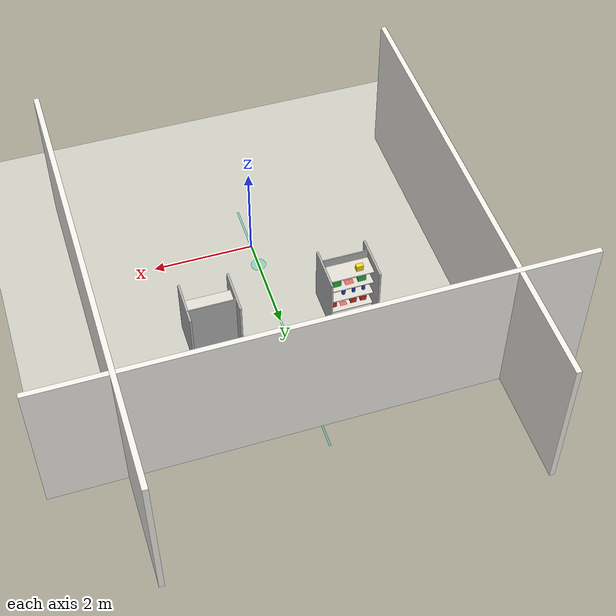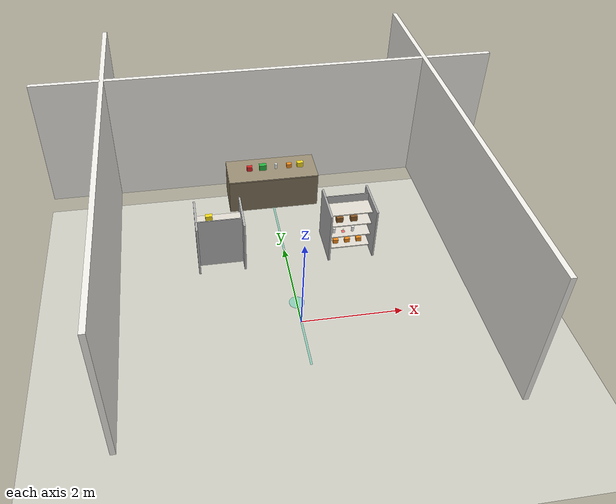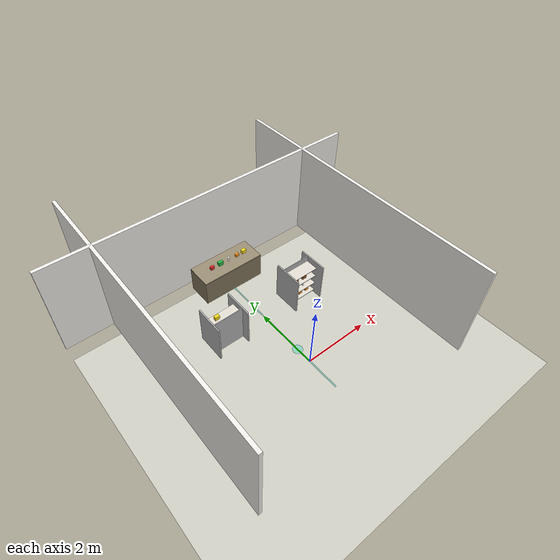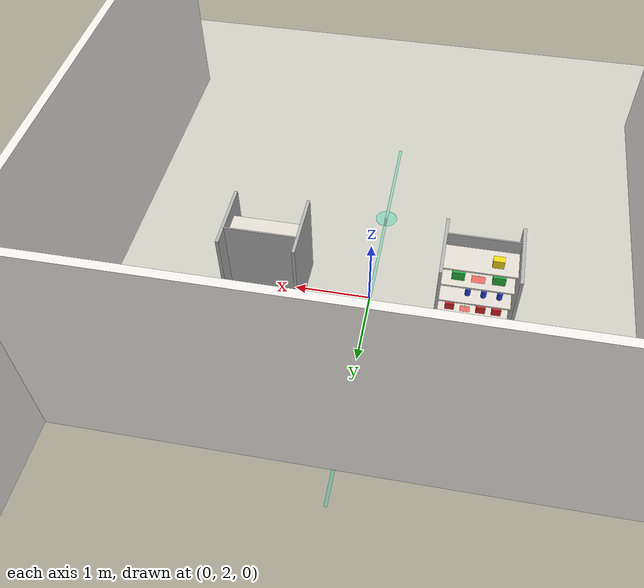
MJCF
<mujoco model="roboshelf_retail_v1">

  <compiler angle="radian" autolimits="true"/>
  <option timestep="0.002" gravity="0 0 -9.81" integrator="implicit"/>

  <visual>
    <headlight diffuse="0.8 0.8 0.8" ambient="0.3 0.3 0.3" specular="0.1 0.1 0.1"/>
    <global azimuth="135" elevation="-25" offwidth="1920" offheight="1080"/>
    <quality shadowsize="4096"/>
    <map znear="0.01" zfar="50"/>
  </visual>

  <default>
    <default class="product_box">
      <geom friction="0.7 0.01 0.001" condim="4" solref="0.01 1" solimp="0.9 0.95 0.001"/>
    </default>
    <default class="product_cyl">
      <geom friction="0.6 0.01 0.001" condim="4" solref="0.01 1" solimp="0.9 0.95 0.001"/>
    </default>
  </default>

  <asset>
    <texture name="tex_floor" type="2d" builtin="checker" width="512" height="512"
             rgb1="0.82 0.82 0.78" rgb2="0.78 0.78 0.74"/>
    <material name="mat_floor" texture="tex_floor" texrepeat="8 6" reflectance="0.1"/>
    <material name="mat_shelf" rgba="0.7 0.7 0.7 1" reflectance="0.3" shininess="0.5"/>
    <material name="mat_board" rgba="0.88 0.86 0.82 1" reflectance="0.05"/>
    <material name="mat_wall" rgba="0.95 0.94 0.92 1"/>
    <material name="mat_red" rgba="0.85 0.15 0.15 1"/>
    <material name="mat_blue" rgba="0.15 0.25 0.85 1"/>
    <material name="mat_green" rgba="0.15 0.70 0.25 1"/>
    <material name="mat_yellow" rgba="0.95 0.85 0.10 1"/>
    <material name="mat_orange" rgba="0.95 0.55 0.10 1"/>
    <material name="mat_white" rgba="0.95 0.95 0.95 1"/>
    <material name="mat_brown" rgba="0.55 0.35 0.15 1"/>
    <material name="mat_cardboard" rgba="0.65 0.50 0.30 1"/>
  </asset>

  <worldbody>

    <!-- Világítás -->
    <light name="ceil_1" pos="0 1.5 3.0" dir="0 0 -1" diffuse="0.9 0.9 0.9" castshadow="true" cutoff="60"/>
    <light name="ceil_2" pos="0 3.5 3.0" dir="0 0 -1" diffuse="0.9 0.9 0.9" castshadow="true" cutoff="60"/>
    <light name="ambient" pos="0 2.5 4.0" dir="0 0 -1" diffuse="0.3 0.3 0.3" castshadow="false"/>

    <!-- Padló & falak -->
    <geom name="floor" type="plane" size="5 4 0.01" material="mat_floor"/>
    <geom name="wall_back" type="box" size="5 0.05 1.5" pos="0 4.5 1.5" material="mat_wall"/>
    <geom name="wall_L" type="box" size="0.05 4.5 1.5" pos="-3.5 2.25 1.5" material="mat_wall"/>
    <geom name="wall_R" type="box" size="0.05 4.5 1.5" pos="3.5 2.25 1.5" material="mat_wall"/>

    <!-- ========== GONDOLA A (statikus polcváz) — x=-1.35, y=2.0 ========== -->
    <body name="gondola_A" pos="-1.35 2.0 0">
      <geom name="gA_sL" type="box" size="0.02 0.45 0.60" pos="-0.47 0 0.60" material="mat_shelf"/>
      <geom name="gA_sR" type="box" size="0.02 0.45 0.60" pos="0.47 0 0.60" material="mat_shelf"/>
      <geom name="gA_bk" type="box" size="0.47 0.01 0.60" pos="0 -0.20 0.60" material="mat_shelf"/>
      <geom name="gA_b1" type="box" size="0.45 0.20 0.012" pos="0 0 0.10" material="mat_board"/>
      <geom name="gA_b2" type="box" size="0.45 0.20 0.012" pos="0 0 0.40" material="mat_board"/>
      <geom name="gA_b3" type="box" size="0.45 0.20 0.012" pos="0 0 0.70" material="mat_board"/>
      <geom name="gA_b4" type="box" size="0.45 0.20 0.012" pos="0 0 1.00" material="mat_board"/>
    </body>

    <!-- ========== GONDOLA B (statikus polcváz) — x=1.35, y=2.0 ========== -->
    <body name="gondola_B" pos="1.35 2.0 0">
      <geom name="gB_sL" type="box" size="0.02 0.45 0.60" pos="-0.47 0 0.60" material="mat_shelf"/>
      <geom name="gB_sR" type="box" size="0.02 0.45 0.60" pos="0.47 0 0.60" material="mat_shelf"/>
      <geom name="gB_bk" type="box" size="0.47 0.01 0.60" pos="0 0.20 0.60" material="mat_shelf"/>
      <geom name="gB_b1" type="box" size="0.45 0.20 0.012" pos="0 0 0.10" material="mat_board"/>
      <geom name="gB_b2" type="box" size="0.45 0.20 0.012" pos="0 0 0.40" material="mat_board"/>
      <geom name="gB_b3" type="box" size="0.45 0.20 0.012" pos="0 0 0.70" material="mat_board"/>
      <geom name="gB_b4" type="box" size="0.45 0.20 0.012" pos="0 0 1.00" material="mat_board"/>
    </body>

    <!-- ========== RAKTÁR ASZTAL (statikus) ========== -->
    <body name="storage" pos="0 3.8 0">
      <geom name="st_legs" type="box" size="1.0 0.40 0.40" pos="0 0 0.40" rgba="0.50 0.45 0.35 1"/>
      <geom name="st_top" type="box" size="1.0 0.40 0.015" pos="0 0 0.815" rgba="0.60 0.55 0.45 1"/>
      <geom name="crate_1" type="box" size="0.25 0.20 0.15" pos="-0.70 0.25 0.15" material="mat_cardboard"/>
      <geom name="crate_2" type="box" size="0.20 0.15 0.12" pos="0.70 0.30 0.12" material="mat_cardboard"/>
    </body>

    <!-- ========== POLCON LÉVŐ TERMÉKEK (freejoint, worldbody szinten) ========== -->

    <!-- Gondola A, 1. polc: piros dobozok, z = 0.10 + 0.012 + 0.055 = 0.167 -->
    <body name="pA1_1" pos="-1.65 2.05 0.167"><freejoint/>
      <geom type="box" size="0.06 0.04 0.055" class="product_box" material="mat_red" mass="0.35"/></body>
    <body name="pA1_2" pos="-1.45 2.05 0.167"><freejoint/>
      <geom type="box" size="0.06 0.04 0.055" class="product_box" material="mat_red" mass="0.35"/></body>
    <!-- pA1_3: ÜRES (OOS) -->
    <body name="pA1_4" pos="-1.05 2.05 0.167"><freejoint/>
      <geom type="box" size="0.06 0.04 0.055" class="product_box" material="mat_red" mass="0.35"/></body>

    <!-- Gondola A, 2. polc: kék hengerek, z = 0.40 + 0.012 + 0.055 = 0.467 -->
    <body name="pA2_1" pos="-1.65 2.05 0.467"><freejoint/>
      <geom type="cylinder" size="0.035 0.055" class="product_cyl" material="mat_blue" mass="0.50"/></body>
    <body name="pA2_2" pos="-1.45 2.05 0.467"><freejoint/>
      <geom type="cylinder" size="0.035 0.055" class="product_cyl" material="mat_blue" mass="0.50"/></body>
    <body name="pA2_3" pos="-1.25 2.05 0.467"><freejoint/>
      <geom type="cylinder" size="0.035 0.055" class="product_cyl" material="mat_blue" mass="0.50"/></body>

    <!-- Gondola A, 3. polc: zöld dobozok, z = 0.70 + 0.012 + 0.065 = 0.777 -->
    <body name="pA3_1" pos="-1.60 2.05 0.777"><freejoint/>
      <geom type="box" size="0.08 0.05 0.065" class="product_box" material="mat_green" mass="0.60"/></body>
    <!-- pA3_2: ÜRES (OOS) -->
    <body name="pA3_3" pos="-1.10 2.05 0.777"><freejoint/>
      <geom type="box" size="0.08 0.05 0.065" class="product_box" material="mat_green" mass="0.60"/></body>

    <!-- Gondola A, 4. polc: sárga, z = 1.00 + 0.012 + 0.06 = 1.072 -->
    <body name="pA4_1" pos="-1.55 2.05 1.072"><freejoint/>
      <geom type="box" size="0.07 0.045 0.06" class="product_box" material="mat_yellow" mass="0.25"/></body>

    <!-- Gondola B, 1. polc: narancssárga -->
    <body name="pB1_1" pos="1.10 1.95 0.167"><freejoint/>
      <geom type="box" size="0.055 0.04 0.05" class="product_box" material="mat_orange" mass="0.30"/></body>
    <body name="pB1_2" pos="1.35 1.95 0.167"><freejoint/>
      <geom type="box" size="0.055 0.04 0.05" class="product_box" material="mat_orange" mass="0.30"/></body>
    <body name="pB1_3" pos="1.60 1.95 0.167"><freejoint/>
      <geom type="box" size="0.055 0.04 0.05" class="product_box" material="mat_orange" mass="0.30"/></body>

    <!-- Gondola B, 2. polc: fehér hengerek -->
    <body name="pB2_1" pos="1.05 1.95 0.472"><freejoint/>
      <geom type="cylinder" size="0.03 0.06" class="product_cyl" material="mat_white" mass="0.40"/></body>
    <!-- pB2_2: ÜRES (OOS) -->
    <body name="pB2_3" pos="1.45 1.95 0.472"><freejoint/>
      <geom type="cylinder" size="0.03 0.06" class="product_cyl" material="mat_white" mass="0.40"/></body>

    <!-- Gondola B, 3. polc: barna -->
    <body name="pB3_1" pos="1.15 1.95 0.777"><freejoint/>
      <geom type="box" size="0.07 0.05 0.06" class="product_box" material="mat_brown" mass="0.55"/></body>
    <body name="pB3_2" pos="1.45 1.95 0.777"><freejoint/>
      <geom type="box" size="0.07 0.05 0.06" class="product_box" material="mat_brown" mass="0.55"/></body>

    <!-- ========== RAKTÁRI TERMÉKEK (pótolni kell a polcra) ========== -->
    <!-- stock_1: piros → gA 1. polc 3. pozíció -->
    <body name="stock_1" pos="-0.50 3.8 0.885"><freejoint/>
      <geom type="box" size="0.06 0.04 0.055" class="product_box" material="mat_red" mass="0.35"/></body>
    <!-- stock_2: zöld → gA 3. polc 2. pozíció -->
    <body name="stock_2" pos="-0.20 3.8 0.895"><freejoint/>
      <geom type="box" size="0.08 0.05 0.065" class="product_box" material="mat_green" mass="0.60"/></body>
    <!-- stock_3: fehér → gB 2. polc 2. pozíció -->
    <body name="stock_3" pos="0.10 3.8 0.890"><freejoint/>
      <geom type="cylinder" size="0.03 0.06" class="product_cyl" material="mat_white" mass="0.40"/></body>
    <!-- stock_4: extra narancssárga -->
    <body name="stock_4" pos="0.40 3.8 0.880"><freejoint/>
      <geom type="box" size="0.055 0.04 0.05" class="product_box" material="mat_orange" mass="0.30"/></body>
    <!-- stock_5: extra sárga -->
    <body name="stock_5" pos="0.65 3.8 0.890"><freejoint/>
      <geom type="box" size="0.07 0.045 0.06" class="product_box" material="mat_yellow" mass="0.25"/></body>

    <!-- Jelölők -->
    <geom name="nav" type="box" size="0.02 3.0 0.001" pos="0 2.0 0.001" rgba="0 0.83 0.66 0.3" contype="0" conaffinity="0"/>
    <site name="oos_A1_3" type="box" size="0.065 0.045 0.002" pos="-1.25 2.05 0.115" rgba="1 0 0 0.5"/>
    <site name="oos_A3_2" type="box" size="0.085 0.055 0.002" pos="-1.35 2.05 0.715" rgba="1 0 0 0.5"/>
    <site name="oos_B2_2" type="box" size="0.035 0.035 0.002" pos="1.25 1.95 0.415" rgba="1 0 0 0.5"/>
    <site name="robot_start" type="cylinder" size="0.15 0.001" pos="0 0.5 0.001" rgba="0 0.83 0.66 0.3"/>
    <site name="target_A1_3" type="sphere" size="0.01" pos="-1.25 2.05 0.167" rgba="0 1 0 0.3"/>
    <site name="target_A3_2" type="sphere" size="0.01" pos="-1.35 2.05 0.777" rgba="0 1 0 0.3"/>
    <site name="target_B2_2" type="sphere" size="0.01" pos="1.25 1.95 0.472" rgba="0 1 0 0.3"/>

  </worldbody>

  <sensor>
    <framepos name="s_stock_1" objtype="body" objname="stock_1"/>
    <framepos name="s_stock_2" objtype="body" objname="stock_2"/>
    <framepos name="s_stock_3" objtype="body" objname="stock_3"/>
    <framepos name="s_stock_4" objtype="body" objname="stock_4"/>
    <framepos name="s_stock_5" objtype="body" objname="stock_5"/>
  </sensor>

</mujoco>
